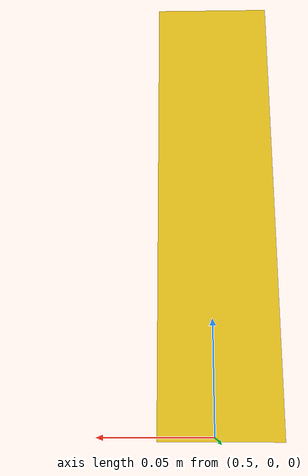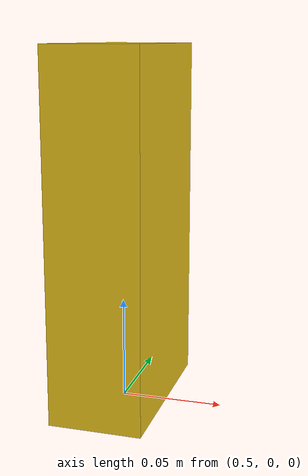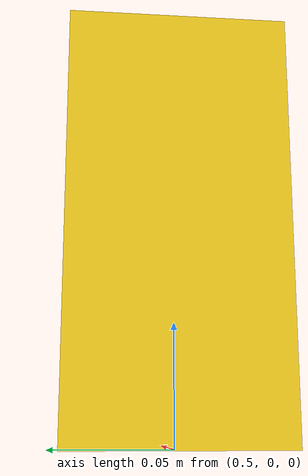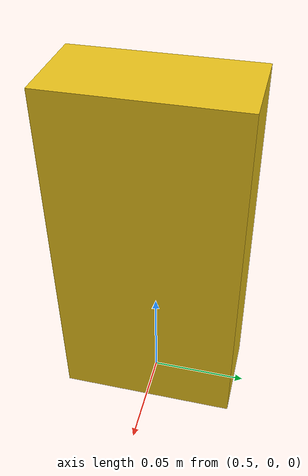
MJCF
<mujoco model="reach_box">
  <worldbody>
    <body name="sugar_box" pos="0.5 0 0.088">
      <freejoint name="box_free"/>
      <geom name="sugar_box_geom" type="box" size="0.0225 0.045 0.0875" mass="0.5"
            rgba="0.9 0.75 0.1 1" contype="1" conaffinity="1"/>
      <site name="object_site" pos="0 0 0" size="0.008" rgba="0.9 0.75 0.1 1" group="0"/>
    </body>
  </worldbody>
</mujoco>
